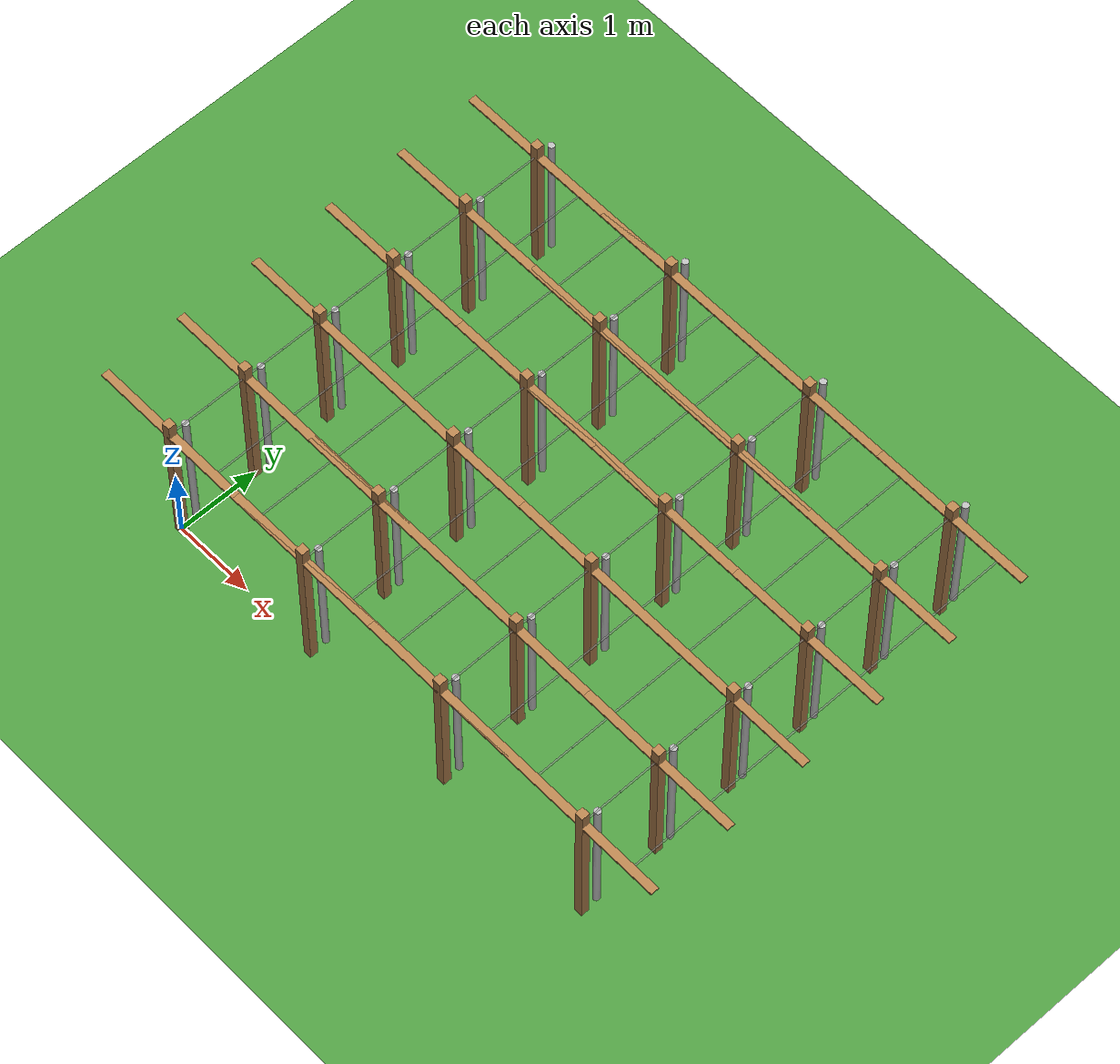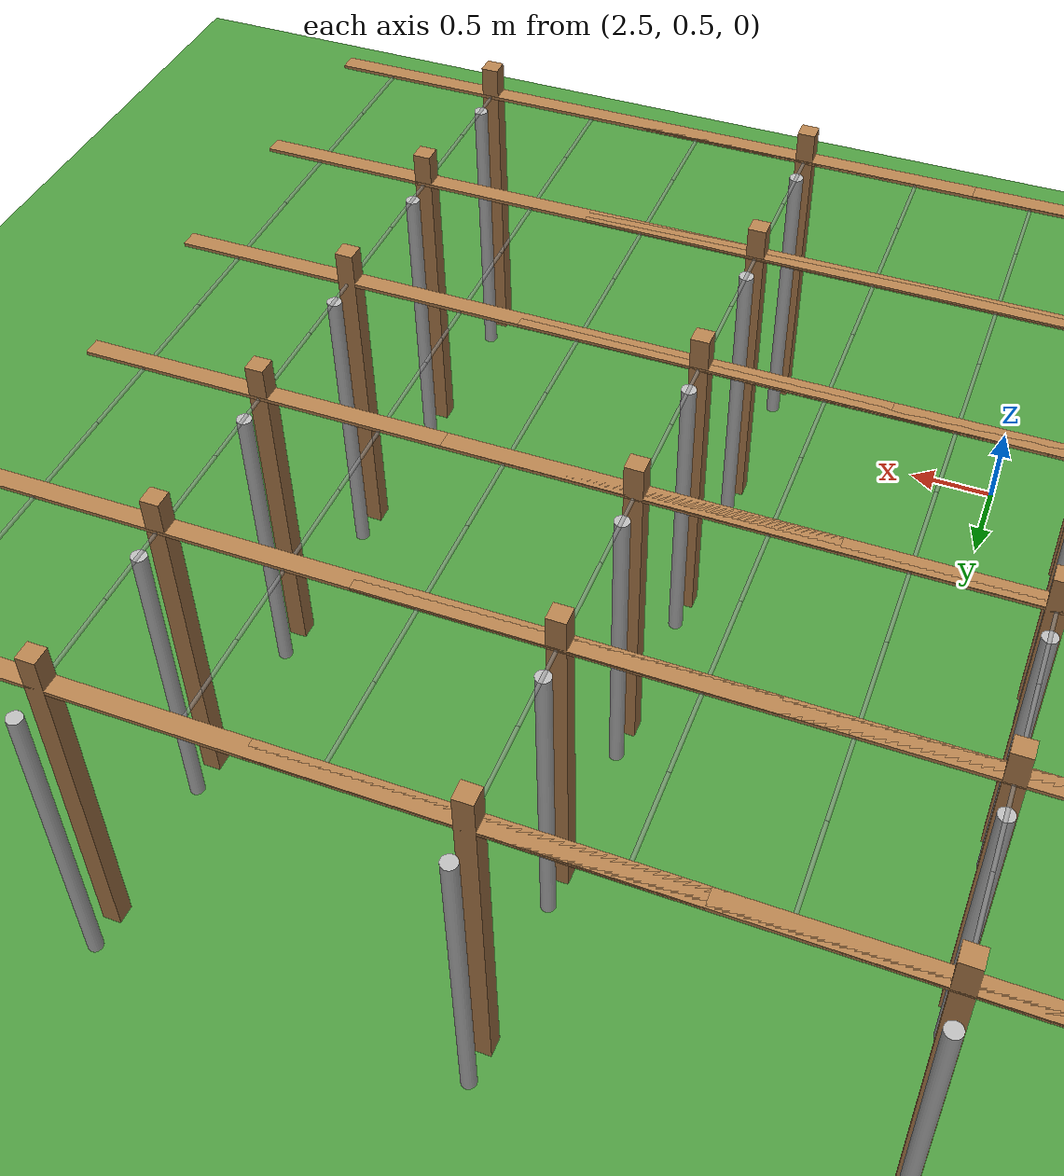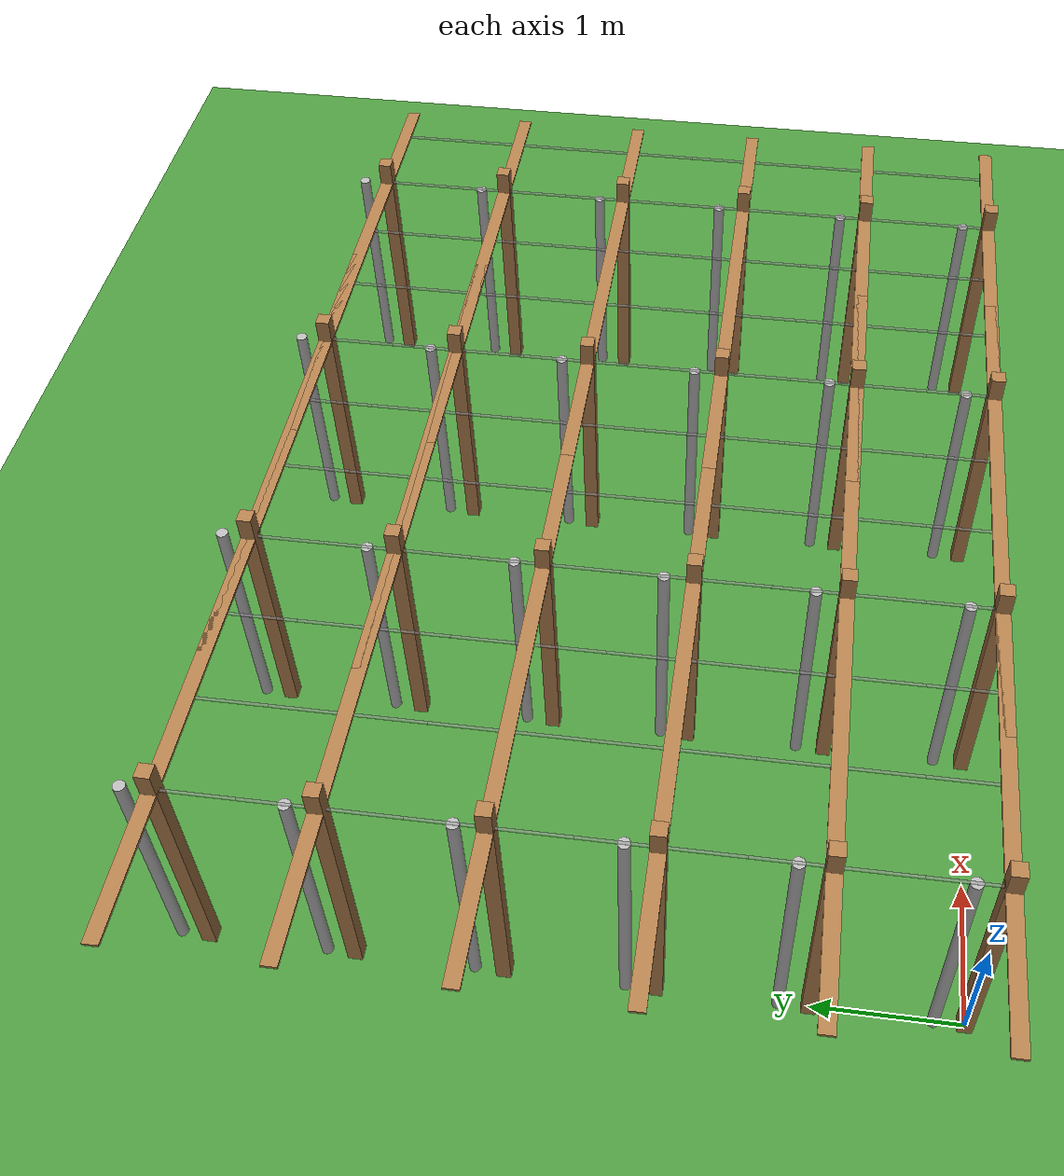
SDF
<sdf version="1.4">
 <world name="test_50fruit_0">
  <include><uri>model://sun</uri><pose>0 50 10 0 0 0</pose></include>
  <include><uri>model://orchard_ground_plane</uri></include>
  <include><name>post_0</name><uri>model://post</uri></include>
  <include><name>post_1</name><pose>0.0 1.0 0 0 0 0</pose><uri>model://post</uri></include>
  <include><name>post_2</name><pose>0.0 2.0 0 0 0 0</pose><uri>model://post</uri></include>
  <include><name>post_3</name><pose>0.0 3.0 0 0 0 0</pose><uri>model://post</uri></include>
  <include><name>post_4</name><pose>0.0 4.0 0 0 0 0</pose><uri>model://post</uri></include>
  <include><name>post_5</name><pose>0.0 5.0 0 0 0 0</pose><uri>model://post</uri></include>
  <include><name>post_6</name><pose>2.0 0.0 0 0 0 0</pose><uri>model://post</uri></include>
  <include><name>post_7</name><pose>2.0 1.0 0 0 0 0</pose><uri>model://post</uri></include>
  <include><name>post_8</name><pose>2.0 2.0 0 0 0 0</pose><uri>model://post</uri></include>
  <include><name>post_9</name><pose>2.0 3.0 0 0 0 0</pose><uri>model://post</uri></include>
  <include><name>post_10</name><pose>2.0 4.0 0 0 0 0</pose><uri>model://post</uri></include>
  <include><name>post_11</name><pose>2.0 5.0 0 0 0 0</pose><uri>model://post</uri></include>
  <include><name>post_12</name><pose>4.0 0.0 0 0 0 0</pose><uri>model://post</uri></include>
  <include><name>post_13</name><pose>4.0 1.0 0 0 0 0</pose><uri>model://post</uri></include>
  <include><name>post_14</name><pose>4.0 2.0 0 0 0 0</pose><uri>model://post</uri></include>
  <include><name>post_15</name><pose>4.0 3.0 0 0 0 0</pose><uri>model://post</uri></include>
  <include><name>post_16</name><pose>4.0 4.0 0 0 0 0</pose><uri>model://post</uri></include>
  <include><name>post_17</name><pose>4.0 5.0 0 0 0 0</pose><uri>model://post</uri></include>
  <include><name>post_18</name><pose>6.0 0.0 0 0 0 0</pose><uri>model://post</uri></include>
  <include><name>post_19</name><pose>6.0 1.0 0 0 0 0</pose><uri>model://post</uri></include>
  <include><name>post_20</name><pose>6.0 2.0 0 0 0 0</pose><uri>model://post</uri></include>
  <include><name>post_21</name><pose>6.0 3.0 0 0 0 0</pose><uri>model://post</uri></include>
  <include><name>post_22</name><pose>6.0 4.0 0 0 0 0</pose><uri>model://post</uri></include>
  <include><name>post_23</name><pose>6.0 5.0 0 0 0 0</pose><uri>model://post</uri></include>
  <include><name>crossbeam_0</name><pose>1.0 0.0 1.8 0 0 0</pose><uri>model://crossbeam</uri></include>
  <include><name>crossbeam_1</name><pose>1.0 1.0 1.8 0 0 0</pose><uri>model://crossbeam</uri></include>
  <include><name>crossbeam_2</name><pose>1.0 2.0 1.8 0 0 0</pose><uri>model://crossbeam</uri></include>
  <include><name>crossbeam_3</name><pose>1.0 3.0 1.8 0 0 0</pose><uri>model://crossbeam</uri></include>
  <include><name>crossbeam_4</name><pose>1.0 4.0 1.8 0 0 0</pose><uri>model://crossbeam</uri></include>
  <include><name>crossbeam_5</name><pose>1.0 5.0 1.8 0 0 0</pose><uri>model://crossbeam</uri></include>
  <include><name>crossbeam_6</name><pose>3.0 0.0 1.8 0 0 0</pose><uri>model://crossbeam</uri></include>
  <include><name>crossbeam_7</name><pose>3.0 1.0 1.8 0 0 0</pose><uri>model://crossbeam</uri></include>
  <include><name>crossbeam_8</name><pose>3.0 2.0 1.8 0 0 0</pose><uri>model://crossbeam</uri></include>
  <include><name>crossbeam_9</name><pose>3.0 3.0 1.8 0 0 0</pose><uri>model://crossbeam</uri></include>
  <include><name>crossbeam_10</name><pose>3.0 4.0 1.8 0 0 0</pose><uri>model://crossbeam</uri></include>
  <include><name>crossbeam_11</name><pose>3.0 5.0 1.8 0 0 0</pose><uri>model://crossbeam</uri></include>
  <include><name>crossbeam_12</name><pose>5.0 0.0 1.8 0 0 0</pose><uri>model://crossbeam</uri></include>
  <include><name>crossbeam_13</name><pose>5.0 1.0 1.8 0 0 0</pose><uri>model://crossbeam</uri></include>
  <include><name>crossbeam_14</name><pose>5.0 2.0 1.8 0 0 0</pose><uri>model://crossbeam</uri></include>
  <include><name>crossbeam_15</name><pose>5.0 3.0 1.8 0 0 0</pose><uri>model://crossbeam</uri></include>
  <include><name>crossbeam_16</name><pose>5.0 4.0 1.8 0 0 0</pose><uri>model://crossbeam</uri></include>
  <include><name>crossbeam_17</name><pose>5.0 5.0 1.8 0 0 0</pose><uri>model://crossbeam</uri></include>
  <include><name>wire_0</name><pose>0.0 0.25 1.8 1.570796 0 0</pose><uri>model://wire</uri></include>
  <include><name>wire_1</name><pose>0.0 0.75 1.8 1.570796 0 0</pose><uri>model://wire</uri></include>
  <include><name>wire_2</name><pose>0.0 1.25 1.8 1.570796 0 0</pose><uri>model://wire</uri></include>
  <include><name>wire_3</name><pose>0.0 1.75 1.8 1.570796 0 0</pose><uri>model://wire</uri></include>
  <include><name>wire_4</name><pose>0.0 2.25 1.8 1.570796 0 0</pose><uri>model://wire</uri></include>
  <include><name>wire_5</name><pose>0.0 2.75 1.8 1.570796 0 0</pose><uri>model://wire</uri></include>
  <include><name>wire_6</name><pose>0.0 3.25 1.8 1.570796 0 0</pose><uri>model://wire</uri></include>
  <include><name>wire_7</name><pose>0.0 3.75 1.8 1.570796 0 0</pose><uri>model://wire</uri></include>
  <include><name>wire_8</name><pose>0.0 4.25 1.8 1.570796 0 0</pose><uri>model://wire</uri></include>
  <include><name>wire_9</name><pose>0.0 4.75 1.8 1.570796 0 0</pose><uri>model://wire</uri></include>
  <include>
   <name>wire_10</name>
   <pose>0.666666666667 0.25 1.8 1.570796 0 0</pose>
   <uri>model://wire</uri>
  </include>
  <include>
   <name>wire_11</name>
   <pose>0.666666666667 0.75 1.8 1.570796 0 0</pose>
   <uri>model://wire</uri>
  </include>
  <include>
   <name>wire_12</name>
   <pose>0.666666666667 1.25 1.8 1.570796 0 0</pose>
   <uri>model://wire</uri>
  </include>
  <include>
   <name>wire_13</name>
   <pose>0.666666666667 1.75 1.8 1.570796 0 0</pose>
   <uri>model://wire</uri>
  </include>
  <include>
   <name>wire_14</name>
   <pose>0.666666666667 2.25 1.8 1.570796 0 0</pose>
   <uri>model://wire</uri>
  </include>
  <include>
   <name>wire_15</name>
   <pose>0.666666666667 2.75 1.8 1.570796 0 0</pose>
   <uri>model://wire</uri>
  </include>
  <include>
   <name>wire_16</name>
   <pose>0.666666666667 3.25 1.8 1.570796 0 0</pose>
   <uri>model://wire</uri>
  </include>
  <include>
   <name>wire_17</name>
   <pose>0.666666666667 3.75 1.8 1.570796 0 0</pose>
   <uri>model://wire</uri>
  </include>
  <include>
   <name>wire_18</name>
   <pose>0.666666666667 4.25 1.8 1.570796 0 0</pose>
   <uri>model://wire</uri>
  </include>
  <include>
   <name>wire_19</name>
   <pose>0.666666666667 4.75 1.8 1.570796 0 0</pose>
   <uri>model://wire</uri>
  </include>
  <include><name>wire_20</name><pose>1.33333333333 0.25 1.8 1.570796 0 0</pose><uri>model://wire</uri></include>
  <include><name>wire_21</name><pose>1.33333333333 0.75 1.8 1.570796 0 0</pose><uri>model://wire</uri></include>
  <include><name>wire_22</name><pose>1.33333333333 1.25 1.8 1.570796 0 0</pose><uri>model://wire</uri></include>
  <include><name>wire_23</name><pose>1.33333333333 1.75 1.8 1.570796 0 0</pose><uri>model://wire</uri></include>
  <include><name>wire_24</name><pose>1.33333333333 2.25 1.8 1.570796 0 0</pose><uri>model://wire</uri></include>
  <include><name>wire_25</name><pose>1.33333333333 2.75 1.8 1.570796 0 0</pose><uri>model://wire</uri></include>
  <include><name>wire_26</name><pose>1.33333333333 3.25 1.8 1.570796 0 0</pose><uri>model://wire</uri></include>
  <include><name>wire_27</name><pose>1.33333333333 3.75 1.8 1.570796 0 0</pose><uri>model://wire</uri></include>
  <include><name>wire_28</name><pose>1.33333333333 4.25 1.8 1.570796 0 0</pose><uri>model://wire</uri></include>
  <include><name>wire_29</name><pose>1.33333333333 4.75 1.8 1.570796 0 0</pose><uri>model://wire</uri></include>
  <include><name>wire_30</name><pose>2.0 0.25 1.8 1.570796 0 0</pose><uri>model://wire</uri></include>
  <include><name>wire_31</name><pose>2.0 0.75 1.8 1.570796 0 0</pose><uri>model://wire</uri></include>
  <include><name>wire_32</name><pose>2.0 1.25 1.8 1.570796 0 0</pose><uri>model://wire</uri></include>
  <include><name>wire_33</name><pose>2.0 1.75 1.8 1.570796 0 0</pose><uri>model://wire</uri></include>
  <include><name>wire_34</name><pose>2.0 2.25 1.8 1.570796 0 0</pose><uri>model://wire</uri></include>
  <include><name>wire_35</name><pose>2.0 2.75 1.8 1.570796 0 0</pose><uri>model://wire</uri></include>
  <include><name>wire_36</name><pose>2.0 3.25 1.8 1.570796 0 0</pose><uri>model://wire</uri></include>
  <include><name>wire_37</name><pose>2.0 3.75 1.8 1.570796 0 0</pose><uri>model://wire</uri></include>
  <include><name>wire_38</name><pose>2.0 4.25 1.8 1.570796 0 0</pose><uri>model://wire</uri></include>
  <include><name>wire_39</name><pose>2.0 4.75 1.8 1.570796 0 0</pose><uri>model://wire</uri></include>
  <include><name>wire_40</name><pose>2.66666666667 0.25 1.8 1.570796 0 0</pose><uri>model://wire</uri></include>
  <include><name>wire_41</name><pose>2.66666666667 0.75 1.8 1.570796 0 0</pose><uri>model://wire</uri></include>
  <include><name>wire_42</name><pose>2.66666666667 1.25 1.8 1.570796 0 0</pose><uri>model://wire</uri></include>
  <include><name>wire_43</name><pose>2.66666666667 1.75 1.8 1.570796 0 0</pose><uri>model://wire</uri></include>
  <include><name>wire_44</name><pose>2.66666666667 2.25 1.8 1.570796 0 0</pose><uri>model://wire</uri></include>
  <include><name>wire_45</name><pose>2.66666666667 2.75 1.8 1.570796 0 0</pose><uri>model://wire</uri></include>
  <include><name>wire_46</name><pose>2.66666666667 3.25 1.8 1.570796 0 0</pose><uri>model://wire</uri></include>
  <include><name>wire_47</name><pose>2.66666666667 3.75 1.8 1.570796 0 0</pose><uri>model://wire</uri></include>
  <include><name>wire_48</name><pose>2.66666666667 4.25 1.8 1.570796 0 0</pose><uri>model://wire</uri></include>
  <include><name>wire_49</name><pose>2.66666666667 4.75 1.8 1.570796 0 0</pose><uri>model://wire</uri></include>
  <include><name>wire_50</name><pose>3.33333333333 0.25 1.8 1.570796 0 0</pose><uri>model://wire</uri></include>
  <include><name>wire_51</name><pose>3.33333333333 0.75 1.8 1.570796 0 0</pose><uri>model://wire</uri></include>
  <include><name>wire_52</name><pose>3.33333333333 1.25 1.8 1.570796 0 0</pose><uri>model://wire</uri></include>
  <include><name>wire_53</name><pose>3.33333333333 1.75 1.8 1.570796 0 0</pose><uri>model://wire</uri></include>
  <include><name>wire_54</name><pose>3.33333333333 2.25 1.8 1.570796 0 0</pose><uri>model://wire</uri></include>
  <include><name>wire_55</name><pose>3.33333333333 2.75 1.8 1.570796 0 0</pose><uri>model://wire</uri></include>
  <include><name>wire_56</name><pose>3.33333333333 3.25 1.8 1.570796 0 0</pose><uri>model://wire</uri></include>
  <include><name>wire_57</name><pose>3.33333333333 3.75 1.8 1.570796 0 0</pose><uri>model://wire</uri></include>
  <include><name>wire_58</name><pose>3.33333333333 4.25 1.8 1.570796 0 0</pose><uri>model://wire</uri></include>
  <include><name>wire_59</name><pose>3.33333333333 4.75 1.8 1.570796 0 0</pose><uri>model://wire</uri></include>
  <include><name>wire_60</name><pose>4.0 0.25 1.8 1.570796 0 0</pose><uri>model://wire</uri></include>
  <include><name>wire_61</name><pose>4.0 0.75 1.8 1.570796 0 0</pose><uri>model://wire</uri></include>
  <include><name>wire_62</name><pose>4.0 1.25 1.8 1.570796 0 0</pose><uri>model://wire</uri></include>
  <include><name>wire_63</name><pose>4.0 1.75 1.8 1.570796 0 0</pose><uri>model://wire</uri></include>
  <include><name>wire_64</name><pose>4.0 2.25 1.8 1.570796 0 0</pose><uri>model://wire</uri></include>
  <include><name>wire_65</name><pose>4.0 2.75 1.8 1.570796 0 0</pose><uri>model://wire</uri></include>
  <include><name>wire_66</name><pose>4.0 3.25 1.8 1.570796 0 0</pose><uri>model://wire</uri></include>
  <include><name>wire_67</name><pose>4.0 3.75 1.8 1.570796 0 0</pose><uri>model://wire</uri></include>
  <include><name>wire_68</name><pose>4.0 4.25 1.8 1.570796 0 0</pose><uri>model://wire</uri></include>
  <include><name>wire_69</name><pose>4.0 4.75 1.8 1.570796 0 0</pose><uri>model://wire</uri></include>
  <include><name>wire_70</name><pose>4.66666666667 0.25 1.8 1.570796 0 0</pose><uri>model://wire</uri></include>
  <include><name>wire_71</name><pose>4.66666666667 0.75 1.8 1.570796 0 0</pose><uri>model://wire</uri></include>
  <include><name>wire_72</name><pose>4.66666666667 1.25 1.8 1.570796 0 0</pose><uri>model://wire</uri></include>
  <include><name>wire_73</name><pose>4.66666666667 1.75 1.8 1.570796 0 0</pose><uri>model://wire</uri></include>
  <include><name>wire_74</name><pose>4.66666666667 2.25 1.8 1.570796 0 0</pose><uri>model://wire</uri></include>
  <include><name>wire_75</name><pose>4.66666666667 2.75 1.8 1.570796 0 0</pose><uri>model://wire</uri></include>
  <include><name>wire_76</name><pose>4.66666666667 3.25 1.8 1.570796 0 0</pose><uri>model://wire</uri></include>
  <include><name>wire_77</name><pose>4.66666666667 3.75 1.8 1.570796 0 0</pose><uri>model://wire</uri></include>
  <include><name>wire_78</name><pose>4.66666666667 4.25 1.8 1.570796 0 0</pose><uri>model://wire</uri></include>
  <include><name>wire_79</name><pose>4.66666666667 4.75 1.8 1.570796 0 0</pose><uri>model://wire</uri></include>
  <include><name>wire_80</name><pose>5.33333333333 0.25 1.8 1.570796 0 0</pose><uri>model://wire</uri></include>
  <include><name>wire_81</name><pose>5.33333333333 0.75 1.8 1.570796 0 0</pose><uri>model://wire</uri></include>
  <include><name>wire_82</name><pose>5.33333333333 1.25 1.8 1.570796 0 0</pose><uri>model://wire</uri></include>
  <include><name>wire_83</name><pose>5.33333333333 1.75 1.8 1.570796 0 0</pose><uri>model://wire</uri></include>
  <include><name>wire_84</name><pose>5.33333333333 2.25 1.8 1.570796 0 0</pose><uri>model://wire</uri></include>
  <include><name>wire_85</name><pose>5.33333333333 2.75 1.8 1.570796 0 0</pose><uri>model://wire</uri></include>
  <include><name>wire_86</name><pose>5.33333333333 3.25 1.8 1.570796 0 0</pose><uri>model://wire</uri></include>
  <include><name>wire_87</name><pose>5.33333333333 3.75 1.8 1.570796 0 0</pose><uri>model://wire</uri></include>
  <include><name>wire_88</name><pose>5.33333333333 4.25 1.8 1.570796 0 0</pose><uri>model://wire</uri></include>
  <include><name>wire_89</name><pose>5.33333333333 4.75 1.8 1.570796 0 0</pose><uri>model://wire</uri></include>
  <include><name>wire_90</name><pose>6.0 0.25 1.8 1.570796 0 0</pose><uri>model://wire</uri></include>
  <include><name>wire_91</name><pose>6.0 0.75 1.8 1.570796 0 0</pose><uri>model://wire</uri></include>
  <include><name>wire_92</name><pose>6.0 1.25 1.8 1.570796 0 0</pose><uri>model://wire</uri></include>
  <include><name>wire_93</name><pose>6.0 1.75 1.8 1.570796 0 0</pose><uri>model://wire</uri></include>
  <include><name>wire_94</name><pose>6.0 2.25 1.8 1.570796 0 0</pose><uri>model://wire</uri></include>
  <include><name>wire_95</name><pose>6.0 2.75 1.8 1.570796 0 0</pose><uri>model://wire</uri></include>
  <include><name>wire_96</name><pose>6.0 3.25 1.8 1.570796 0 0</pose><uri>model://wire</uri></include>
  <include><name>wire_97</name><pose>6.0 3.75 1.8 1.570796 0 0</pose><uri>model://wire</uri></include>
  <include><name>wire_98</name><pose>6.0 4.25 1.8 1.570796 0 0</pose><uri>model://wire</uri></include>
  <include><name>wire_99</name><pose>6.0 4.75 1.8 1.570796 0 0</pose><uri>model://wire</uri></include>
  <include>
   <name>wire_100</name>
   <pose>6.66666666667 0.25 1.8 1.570796 0 0</pose>
   <uri>model://wire</uri>
  </include>
  <include>
   <name>wire_101</name>
   <pose>6.66666666667 0.75 1.8 1.570796 0 0</pose>
   <uri>model://wire</uri>
  </include>
  <include>
   <name>wire_102</name>
   <pose>6.66666666667 1.25 1.8 1.570796 0 0</pose>
   <uri>model://wire</uri>
  </include>
  <include>
   <name>wire_103</name>
   <pose>6.66666666667 1.75 1.8 1.570796 0 0</pose>
   <uri>model://wire</uri>
  </include>
  <include>
   <name>wire_104</name>
   <pose>6.66666666667 2.25 1.8 1.570796 0 0</pose>
   <uri>model://wire</uri>
  </include>
  <include>
   <name>wire_105</name>
   <pose>6.66666666667 2.75 1.8 1.570796 0 0</pose>
   <uri>model://wire</uri>
  </include>
  <include>
   <name>wire_106</name>
   <pose>6.66666666667 3.25 1.8 1.570796 0 0</pose>
   <uri>model://wire</uri>
  </include>
  <include>
   <name>wire_107</name>
   <pose>6.66666666667 3.75 1.8 1.570796 0 0</pose>
   <uri>model://wire</uri>
  </include>
  <include>
   <name>wire_108</name>
   <pose>6.66666666667 4.25 1.8 1.570796 0 0</pose>
   <uri>model://wire</uri>
  </include>
  <include>
   <name>wire_109</name>
   <pose>6.66666666667 4.75 1.8 1.570796 0 0</pose>
   <uri>model://wire</uri>
  </include>
  <include><name>tree_0</name><pose>0.0 0.2 0 0 0 0</pose><uri>model://tree_trunk</uri></include>
  <include><name>tree_1</name><pose>0.0 1.2 0 0 0 0</pose><uri>model://tree_trunk</uri></include>
  <include><name>tree_2</name><pose>0.0 2.2 0 0 0 0</pose><uri>model://tree_trunk</uri></include>
  <include><name>tree_3</name><pose>0.0 3.2 0 0 0 0</pose><uri>model://tree_trunk</uri></include>
  <include><name>tree_4</name><pose>0.0 4.2 0 0 0 0</pose><uri>model://tree_trunk</uri></include>
  <include><name>tree_5</name><pose>0.0 5.2 0 0 0 0</pose><uri>model://tree_trunk</uri></include>
  <include><name>tree_6</name><pose>2.0 0.2 0 0 0 0</pose><uri>model://tree_trunk</uri></include>
  <include><name>tree_7</name><pose>2.0 1.2 0 0 0 0</pose><uri>model://tree_trunk</uri></include>
  <include><name>tree_8</name><pose>2.0 2.2 0 0 0 0</pose><uri>model://tree_trunk</uri></include>
  <include><name>tree_9</name><pose>2.0 3.2 0 0 0 0</pose><uri>model://tree_trunk</uri></include>
  <include><name>tree_10</name><pose>2.0 4.2 0 0 0 0</pose><uri>model://tree_trunk</uri></include>
  <include><name>tree_11</name><pose>2.0 5.2 0 0 0 0</pose><uri>model://tree_trunk</uri></include>
  <include><name>tree_12</name><pose>4.0 0.2 0 0 0 0</pose><uri>model://tree_trunk</uri></include>
  <include><name>tree_13</name><pose>4.0 1.2 0 0 0 0</pose><uri>model://tree_trunk</uri></include>
  <include><name>tree_14</name><pose>4.0 2.2 0 0 0 0</pose><uri>model://tree_trunk</uri></include>
  <include><name>tree_15</name><pose>4.0 3.2 0 0 0 0</pose><uri>model://tree_trunk</uri></include>
  <include><name>tree_16</name><pose>4.0 4.2 0 0 0 0</pose><uri>model://tree_trunk</uri></include>
  <include><name>tree_17</name><pose>4.0 5.2 0 0 0 0</pose><uri>model://tree_trunk</uri></include>
  <include><name>tree_18</name><pose>6.0 0.2 0 0 0 0</pose><uri>model://tree_trunk</uri></include>
  <include><name>tree_19</name><pose>6.0 1.2 0 0 0 0</pose><uri>model://tree_trunk</uri></include>
  <include><name>tree_20</name><pose>6.0 2.2 0 0 0 0</pose><uri>model://tree_trunk</uri></include>
  <include><name>tree_21</name><pose>6.0 3.2 0 0 0 0</pose><uri>model://tree_trunk</uri></include>
  <include><name>tree_22</name><pose>6.0 4.2 0 0 0 0</pose><uri>model://tree_trunk</uri></include>
  <include><name>tree_23</name><pose>6.0 5.2 0 0 0 0</pose><uri>model://tree_trunk</uri></include>
 </world>
</sdf>

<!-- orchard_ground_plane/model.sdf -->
<sdf version="1.5">
  <model name="orchard_ground_plane">
    <static>true</static>
    <link name="link">
      <collision name="collision">
        <geometry>
          <plane>
            <normal>0 0 1</normal>
            <size>100 100</size>
          </plane>
        </geometry>
        <surface>
          <friction>
            <ode>
              <mu>100</mu>
              <mu2>50</mu2>
            </ode>
          </friction>
        </surface>
      </collision>
      <visual name="visual">
        <cast_shadows>false</cast_shadows>
        <geometry>
          <plane>
            <normal>0 0 1</normal>
            <size>100 100</size>
          </plane>
        </geometry>
        <material>
          <script>
            <uri>model://orchard_ground_plane/materials/scripts</uri>
            <uri>model://orchard_ground_plane/materials/textures</uri>
            <name>OrchardGround/FlatGrass</name>
          </script>
        </material>
      </visual>
    </link>
  </model>
</sdf>

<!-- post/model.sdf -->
<sdf version='1.4'>
  <model name="post">
  <static>true</static>
    <link name="post">
      <pose>0 0 1 0 0 0</pose>

      <collision name="collision">
        <geometry>
          <box>
            <size>.1 .1 2</size>
          </box>
        </geometry>
      </collision>

      <visual name="visual">
        <geometry>
          <box>
            <size>.1 .1 2</size>
          </box>
        </geometry>
        <material>
			<script>
				<name>Gazebo/Wood</name>
			</script>
        </material>
      </visual>

    <inertial>
      <pose>0 0 1 0 0 0</pose>
      <mass>1</mass>
      <inertia>
        <ixx>1.0</ixx>
        <ixy>0.0</ixy>
        <ixz>0.0</ixz>
        <iyy>1.0</iyy>
        <iyz>0.0</iyz>
        <izz>1</izz>
      </inertia>
    </inertial>

    </link>

  </model>
</sdf>

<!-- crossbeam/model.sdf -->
<sdf version='1.4'>
  <model name="crossbeam">
  <static>true</static>
    <link name="beam">
      <pose>0 0 0.01 0 0 0</pose>

      <collision name="collision">
        <geometry>
          <box>
            <size>4 .1 .02</size>
          </box>
        </geometry>
      </collision>

      <visual name="visual">
        <geometry>
          <box>
            <size>4 .1 .02</size>
          </box>
        </geometry>
        <material>
	  <script>
	    <name>Gazebo/Wood</name>
	  </script>
        </material>
      </visual>

    <inertial>
      <pose>0 0 0.01 0 0 0</pose>
      <mass>0.5</mass>
      <inertia>
        <ixx>1.0</ixx>
        <ixy>0.0</ixy>
        <ixz>0.0</ixz>
        <iyy>1.0</iyy>
        <iyz>0.0</iyz>
        <izz>1</izz>
      </inertia>
    </inertial>

    </link>

  </model>
</sdf>

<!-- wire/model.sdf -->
<sdf version='1.4'>
  <model name="wire">
  <static>true</static>
    <link name="cylinder">
      <pose>0 0 0.01 0 0 0</pose>

      <collision name="collision">
        <geometry>
          <cylinder>
              <radius>.01</radius> <length>0.5</length>
          </cylinder>
        </geometry>
      </collision>

      <visual name="visual">
        <geometry>
          <cylinder>
              <radius>.01</radius> <length>0.5</length>
          </cylinder>
        </geometry>
        <material>
	  <script>
	    <name>Gazebo/GreyTransparent</name>
	  </script>
        </material>
      </visual>

    <inertial>
      <pose>0 0 0 0 0 0</pose>
      <mass>10</mass>
      <inertia>
        <ixx>0.4</ixx>
        <ixy>0.0</ixy>
        <ixz>0.0</ixz>
        <iyy>0.4</iyy>
        <iyz>0.0</iyz>
        <izz>0.2</izz>
      </inertia>
    </inertial>

    </link>

  </model>
</sdf>

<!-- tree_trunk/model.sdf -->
<sdf version='1.4'>
  <model name="tree_trunk">
  <static>true</static>
    <link name="trunk">
      <pose>0 0 0.9 0 0 0</pose>

      <collision name="collision">
        <geometry>
          <cylinder>
              <radius>.04</radius> <length>1.8</length>
          </cylinder>
        </geometry>
      </collision>

      <visual name="visual">
        <geometry>
          <cylinder>
              <radius>.04</radius> <length>1.8</length>
          </cylinder>
        </geometry>
        <material>
		<script>
			<uri>model://tree_trunk/materials/scripts</uri>
			<uri>model://tree_trunk/materials/textures</uri>
			<name>Tree/Bark</name>
		</script>
        </material>
      </visual>

    <inertial>
      <pose>0 0 0 0 0 0</pose>
      <mass>20</mass>
      <inertia>
        <ixx>0.4</ixx>
        <ixy>0.0</ixy>
        <ixz>0.0</ixz>
        <iyy>0.4</iyy>
        <iyz>0.0</iyz>
        <izz>0.2</izz>
      </inertia>
    </inertial>

    </link>

  </model>
</sdf>
